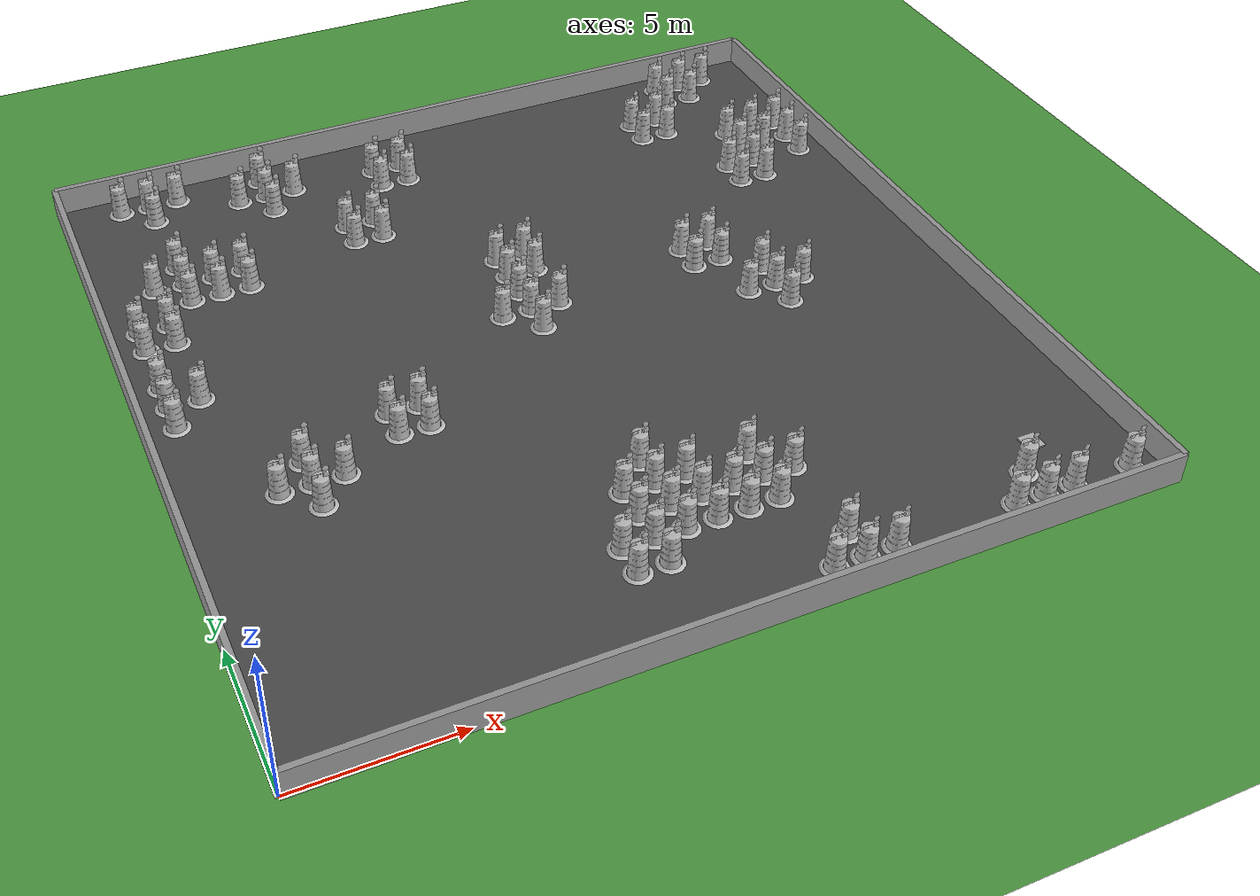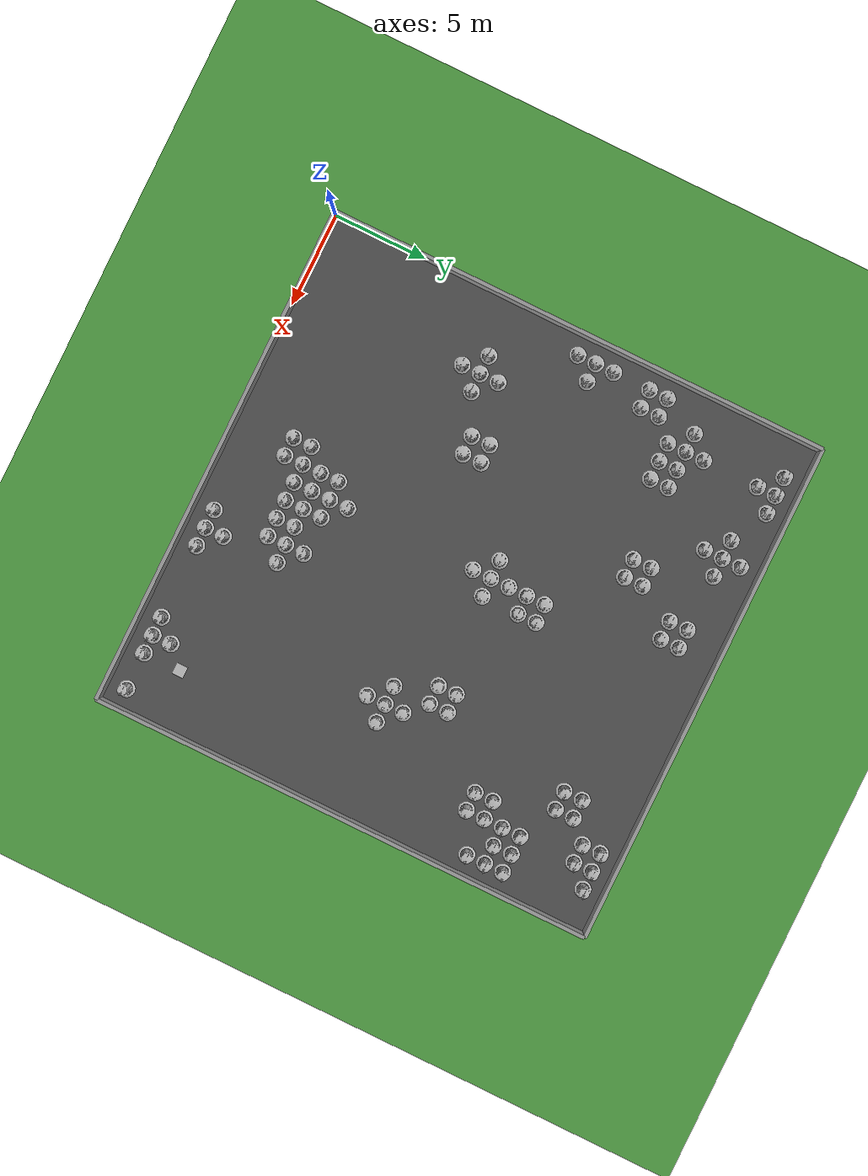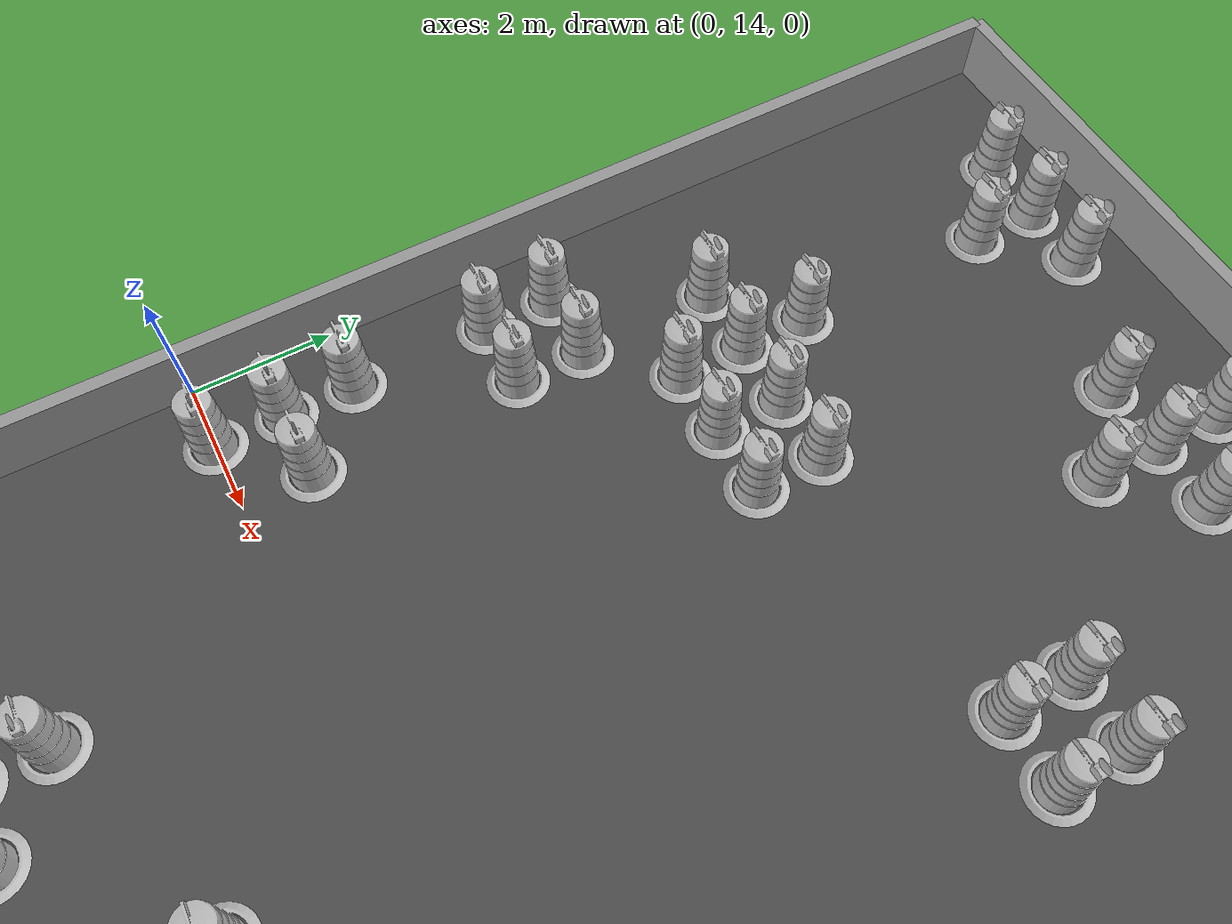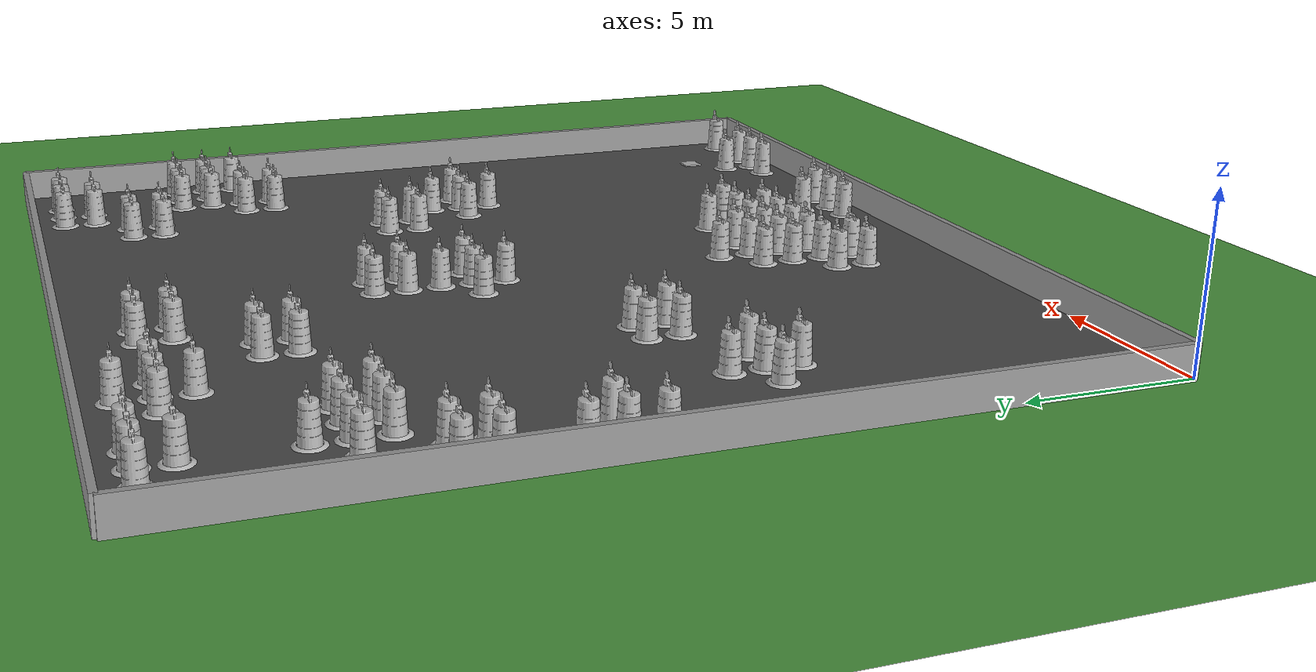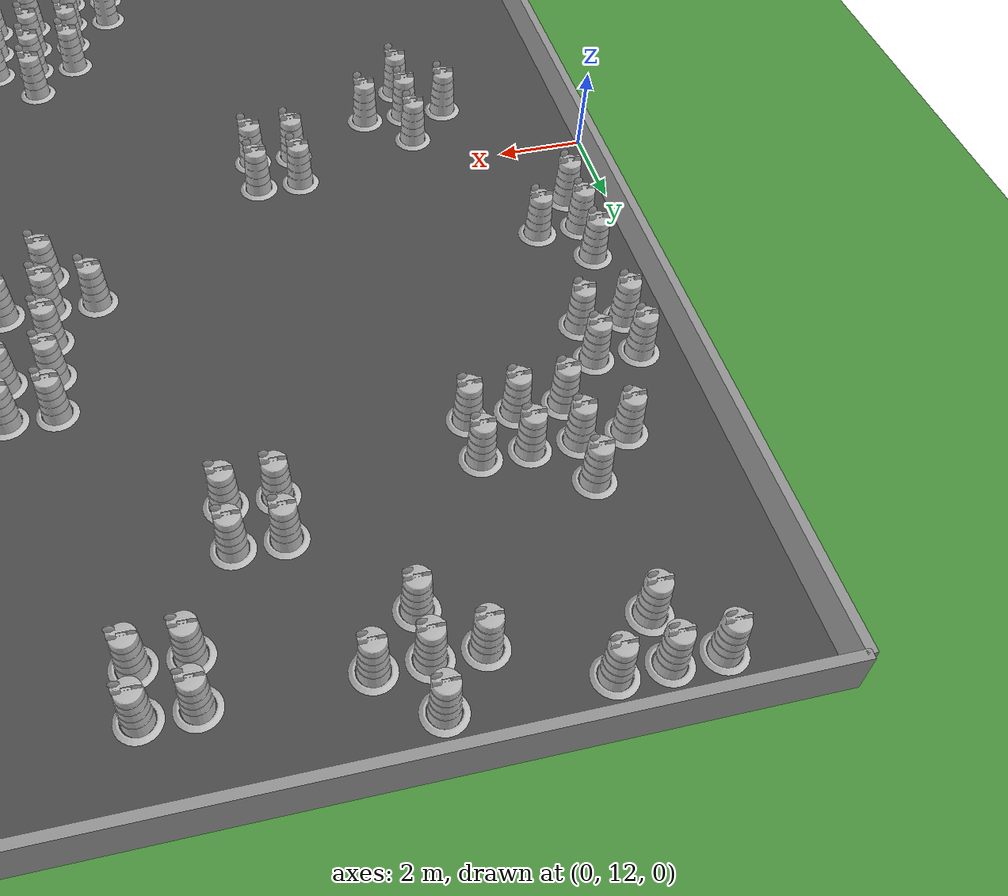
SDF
<sdf version="1.4">
 <world name="default">
  <model name="vrc_driving_terrain">
   <static>1</static>
   <link name="grass_plane">
    <visual name="visual_0">
     <cast_shadows>0</cast_shadows>
     <geometry><plane><normal>0 0 1</normal><size>150 150</size></plane></geometry>
     <material>
      <script>
       <uri>model://vrc_driving_terrain/materials/scripts</uri>
       <uri>model://vrc_driving_terrain/materials/textures</uri>
       <name>vrc/grass</name>
      </script>
     </material>
    </visual>
   </link>
   <pose>0 0 0.01 0 -0 0</pose>
  </model>
  <include><uri>model://ground_plane</uri></include>
  <include><uri>model://sun</uri></include>
  <plugin filename="librotors_gazebo_ros_interface_plugin.so" name="ros_interface_plugin"/>
  <spherical_coordinates>
   <surface_model>EARTH_WGS84</surface_model>
   <latitude_deg>47.3667</latitude_deg>
   <longitude_deg>8.5500</longitude_deg>
   <elevation>500.0</elevation>
   <heading_deg>0</heading_deg>
  </spherical_coordinates>
  <physics type="ode">
   <ode>
    <solver><type>quick</type><iters>1000</iters><sor>1.3</sor></solver>
    <constraints>
     <cfm>0</cfm>
     <erp>0.2</erp>
     <contact_max_correcting_vel>100</contact_max_correcting_vel>
     <contact_surface_layer>0.001</contact_surface_layer>
    </constraints>
   </ode>
   <max_step_size>0.01</max_step_size>
   <real_time_factor>1</real_time_factor>
   <real_time_update_rate>100</real_time_update_rate>
   <gravity>0 0 -9.8</gravity>
  </physics>
  <model name="box_target_green">
   <static>1</static>
   <link name="link">
    <pose>24 3 0 0 0 0</pose>
    <collision name="collision"><geometry><box><size>6 6 2</size></box></geometry></collision>
    <visual name="visual">
     <geometry>
      <mesh><uri>model://box_target_green/meshes/mesh.dae</uri><scale>0.1 0.1 0.1</scale></mesh>
     </geometry>
    </visual>
   </link>
  </model>
  <model name="grey_wall">
   <static>1</static>
   <link name="link">
    <visual name="visual">
     <cast_shadows>0</cast_shadows>
     <geometry><box><size>27 0.2 2</size></box></geometry>
     <material>
      <script>
       <uri>model://grey_wall/materials/scripts</uri>
       <uri>model://grey_wall/materials/textures</uri>
       <name>vrc/grey_wall</name>
      </script>
     </material>
    </visual>
   </link>
   <pose>13.5 0 0 0 0 0</pose>
  </model>
  <model name="grey_wall">
   <static>1</static>
   <link name="link">
    <visual name="visual">
     <cast_shadows>0</cast_shadows>
     <geometry><box><size>27 0.2 2</size></box></geometry>
     <material>
      <script>
       <uri>model://grey_wall/materials/scripts</uri>
       <uri>model://grey_wall/materials/textures</uri>
       <name>vrc/grey_wall</name>
      </script>
     </material>
    </visual>
   </link>
   <pose>0 13.5 0 0 0 1.57079632679</pose>
  </model>
  <model name="grey_wall">
   <static>1</static>
   <link name="link">
    <visual name="visual">
     <cast_shadows>0</cast_shadows>
     <geometry><box><size>27 0.2 2</size></box></geometry>
     <material>
      <script>
       <uri>model://grey_wall/materials/scripts</uri>
       <uri>model://grey_wall/materials/textures</uri>
       <name>vrc/grey_wall</name>
      </script>
     </material>
    </visual>
   </link>
   <pose>27 13.5 0 0 0 -1.57079632679</pose>
  </model>
  <model name="grey_wall">
   <static>1</static>
   <link name="link">
    <visual name="visual">
     <cast_shadows>0</cast_shadows>
     <geometry><box><size>27 0.2 2</size></box></geometry>
     <material>
      <script>
       <uri>model://grey_wall/materials/scripts</uri>
       <uri>model://grey_wall/materials/textures</uri>
       <name>vrc/grey_wall</name>
      </script>
     </material>
    </visual>
   </link>
   <pose>13.5 27 0 0 0 3.14159265359</pose>
  </model>
  <model name="asphalt_plane">
   <static>1</static>
   <link name="link">
    <visual name="visual">
     <cast_shadows>0</cast_shadows>
     <geometry><box><size>27 27 0.1</size></box></geometry>
     <material>
      <script>
       <uri>model://asphalt_plane/materials/scripts</uri>
       <uri>model://asphalt_plane/materials/textures</uri>
       <name>vrc/asphalt</name>
      </script>
     </material>
    </visual>
   </link>
   <pose>13.5 13.5 0 0 0 0</pose>
  </model>
  <model name="Construction Barrel">
   <link name="link">
    <collision name="collision">
     <geometry>
      <mesh><uri>model://construction_barrel/meshes/construction_barrel.dae</uri><scale>1 1 1</scale></mesh>
     </geometry>
    </collision>
    <visual name="visual">
     <geometry><mesh><uri>model://construction_barrel/meshes/construction_barrel.dae</uri></mesh></geometry>
    </visual>
   </link>
   <pose>1 14 0 0 0 0</pose>
   <static>1</static>
  </model>
  <model name="Construction Barrel">
   <link name="link">
    <collision name="collision">
     <geometry>
      <mesh><uri>model://construction_barrel/meshes/construction_barrel.dae</uri><scale>1 1 1</scale></mesh>
     </geometry>
    </collision>
    <visual name="visual">
     <geometry><mesh><uri>model://construction_barrel/meshes/construction_barrel.dae</uri></mesh></geometry>
    </visual>
   </link>
   <pose>1 15 0 0 0 0</pose>
   <static>1</static>
  </model>
  <model name="Construction Barrel">
   <link name="link">
    <collision name="collision">
     <geometry>
      <mesh><uri>model://construction_barrel/meshes/construction_barrel.dae</uri><scale>1 1 1</scale></mesh>
     </geometry>
    </collision>
    <visual name="visual">
     <geometry><mesh><uri>model://construction_barrel/meshes/construction_barrel.dae</uri></mesh></geometry>
    </visual>
   </link>
   <pose>1 16 0 0 0 0</pose>
   <static>1</static>
  </model>
  <model name="Construction Barrel">
   <link name="link">
    <collision name="collision">
     <geometry>
      <mesh><uri>model://construction_barrel/meshes/construction_barrel.dae</uri><scale>1 1 1</scale></mesh>
     </geometry>
    </collision>
    <visual name="visual">
     <geometry><mesh><uri>model://construction_barrel/meshes/construction_barrel.dae</uri></mesh></geometry>
    </visual>
   </link>
   <pose>1 18 0 0 0 0</pose>
   <static>1</static>
  </model>
  <model name="Construction Barrel">
   <link name="link">
    <collision name="collision">
     <geometry>
      <mesh><uri>model://construction_barrel/meshes/construction_barrel.dae</uri><scale>1 1 1</scale></mesh>
     </geometry>
    </collision>
    <visual name="visual">
     <geometry><mesh><uri>model://construction_barrel/meshes/construction_barrel.dae</uri></mesh></geometry>
    </visual>
   </link>
   <pose>1 19 0 0 0 0</pose>
   <static>1</static>
  </model>
  <model name="Construction Barrel">
   <link name="link">
    <collision name="collision">
     <geometry>
      <mesh><uri>model://construction_barrel/meshes/construction_barrel.dae</uri><scale>1 1 1</scale></mesh>
     </geometry>
    </collision>
    <visual name="visual">
     <geometry><mesh><uri>model://construction_barrel/meshes/construction_barrel.dae</uri></mesh></geometry>
    </visual>
   </link>
   <pose>2 15 0 0 0 0</pose>
   <static>1</static>
  </model>
  <model name="Construction Barrel">
   <link name="link">
    <collision name="collision">
     <geometry>
      <mesh><uri>model://construction_barrel/meshes/construction_barrel.dae</uri><scale>1 1 1</scale></mesh>
     </geometry>
    </collision>
    <visual name="visual">
     <geometry><mesh><uri>model://construction_barrel/meshes/construction_barrel.dae</uri></mesh></geometry>
    </visual>
   </link>
   <pose>2 18 0 0 0 0</pose>
   <static>1</static>
  </model>
  <model name="Construction Barrel">
   <link name="link">
    <collision name="collision">
     <geometry>
      <mesh><uri>model://construction_barrel/meshes/construction_barrel.dae</uri><scale>1 1 1</scale></mesh>
     </geometry>
    </collision>
    <visual name="visual">
     <geometry><mesh><uri>model://construction_barrel/meshes/construction_barrel.dae</uri></mesh></geometry>
    </visual>
   </link>
   <pose>2 19 0 0 0 0</pose>
   <static>1</static>
  </model>
  <model name="Construction Barrel">
   <link name="link">
    <collision name="collision">
     <geometry>
      <mesh><uri>model://construction_barrel/meshes/construction_barrel.dae</uri><scale>1 1 1</scale></mesh>
     </geometry>
    </collision>
    <visual name="visual">
     <geometry><mesh><uri>model://construction_barrel/meshes/construction_barrel.dae</uri></mesh></geometry>
    </visual>
   </link>
   <pose>2 21 0 0 0 0</pose>
   <static>1</static>
  </model>
  <model name="Construction Barrel">
   <link name="link">
    <collision name="collision">
     <geometry>
      <mesh><uri>model://construction_barrel/meshes/construction_barrel.dae</uri><scale>1 1 1</scale></mesh>
     </geometry>
    </collision>
    <visual name="visual">
     <geometry><mesh><uri>model://construction_barrel/meshes/construction_barrel.dae</uri></mesh></geometry>
    </visual>
   </link>
   <pose>2 26 0 0 0 0</pose>
   <static>1</static>
  </model>
  <model name="Construction Barrel">
   <link name="link">
    <collision name="collision">
     <geometry>
      <mesh><uri>model://construction_barrel/meshes/construction_barrel.dae</uri><scale>1 1 1</scale></mesh>
     </geometry>
    </collision>
    <visual name="visual">
     <geometry><mesh><uri>model://construction_barrel/meshes/construction_barrel.dae</uri></mesh></geometry>
    </visual>
   </link>
   <pose>3 10 0 0 0 0</pose>
   <static>1</static>
  </model>
  <model name="Construction Barrel">
   <link name="link">
    <collision name="collision">
     <geometry>
      <mesh><uri>model://construction_barrel/meshes/construction_barrel.dae</uri><scale>1 1 1</scale></mesh>
     </geometry>
    </collision>
    <visual name="visual">
     <geometry><mesh><uri>model://construction_barrel/meshes/construction_barrel.dae</uri></mesh></geometry>
    </visual>
   </link>
   <pose>3 20 0 0 0 0</pose>
   <static>1</static>
  </model>
  <model name="Construction Barrel">
   <link name="link">
    <collision name="collision">
     <geometry>
      <mesh><uri>model://construction_barrel/meshes/construction_barrel.dae</uri><scale>1 1 1</scale></mesh>
     </geometry>
    </collision>
    <visual name="visual">
     <geometry><mesh><uri>model://construction_barrel/meshes/construction_barrel.dae</uri></mesh></geometry>
    </visual>
   </link>
   <pose>3 21 0 0 0 0</pose>
   <static>1</static>
  </model>
  <model name="Construction Barrel">
   <link name="link">
    <collision name="collision">
     <geometry>
      <mesh><uri>model://construction_barrel/meshes/construction_barrel.dae</uri><scale>1 1 1</scale></mesh>
     </geometry>
    </collision>
    <visual name="visual">
     <geometry><mesh><uri>model://construction_barrel/meshes/construction_barrel.dae</uri></mesh></geometry>
    </visual>
   </link>
   <pose>3 22 0 0 0 0</pose>
   <static>1</static>
  </model>
  <model name="Construction Barrel">
   <link name="link">
    <collision name="collision">
     <geometry>
      <mesh><uri>model://construction_barrel/meshes/construction_barrel.dae</uri><scale>1 1 1</scale></mesh>
     </geometry>
    </collision>
    <visual name="visual">
     <geometry><mesh><uri>model://construction_barrel/meshes/construction_barrel.dae</uri></mesh></geometry>
    </visual>
   </link>
   <pose>3 25 0 0 0 0</pose>
   <static>1</static>
  </model>
  <model name="Construction Barrel">
   <link name="link">
    <collision name="collision">
     <geometry>
      <mesh><uri>model://construction_barrel/meshes/construction_barrel.dae</uri><scale>1 1 1</scale></mesh>
     </geometry>
    </collision>
    <visual name="visual">
     <geometry><mesh><uri>model://construction_barrel/meshes/construction_barrel.dae</uri></mesh></geometry>
    </visual>
   </link>
   <pose>3 26 0 0 0 0</pose>
   <static>1</static>
  </model>
  <model name="Construction Barrel">
   <link name="link">
    <collision name="collision">
     <geometry>
      <mesh><uri>model://construction_barrel/meshes/construction_barrel.dae</uri><scale>1 1 1</scale></mesh>
     </geometry>
    </collision>
    <visual name="visual">
     <geometry><mesh><uri>model://construction_barrel/meshes/construction_barrel.dae</uri></mesh></geometry>
    </visual>
   </link>
   <pose>4 9 0 0 0 0</pose>
   <static>1</static>
  </model>
  <model name="Construction Barrel">
   <link name="link">
    <collision name="collision">
     <geometry>
      <mesh><uri>model://construction_barrel/meshes/construction_barrel.dae</uri><scale>1 1 1</scale></mesh>
     </geometry>
    </collision>
    <visual name="visual">
     <geometry><mesh><uri>model://construction_barrel/meshes/construction_barrel.dae</uri></mesh></geometry>
    </visual>
   </link>
   <pose>4 10 0 0 0 0</pose>
   <static>1</static>
  </model>
  <model name="Construction Barrel">
   <link name="link">
    <collision name="collision">
     <geometry>
      <mesh><uri>model://construction_barrel/meshes/construction_barrel.dae</uri><scale>1 1 1</scale></mesh>
     </geometry>
    </collision>
    <visual name="visual">
     <geometry><mesh><uri>model://construction_barrel/meshes/construction_barrel.dae</uri></mesh></geometry>
    </visual>
   </link>
   <pose>4 11 0 0 0 0</pose>
   <static>1</static>
  </model>
  <model name="Construction Barrel">
   <link name="link">
    <collision name="collision">
     <geometry>
      <mesh><uri>model://construction_barrel/meshes/construction_barrel.dae</uri><scale>1 1 1</scale></mesh>
     </geometry>
    </collision>
    <visual name="visual">
     <geometry><mesh><uri>model://construction_barrel/meshes/construction_barrel.dae</uri></mesh></geometry>
    </visual>
   </link>
   <pose>4 20 0 0 0 0</pose>
   <static>1</static>
  </model>
  <model name="Construction Barrel">
   <link name="link">
    <collision name="collision">
     <geometry>
      <mesh><uri>model://construction_barrel/meshes/construction_barrel.dae</uri><scale>1 1 1</scale></mesh>
     </geometry>
    </collision>
    <visual name="visual">
     <geometry><mesh><uri>model://construction_barrel/meshes/construction_barrel.dae</uri></mesh></geometry>
    </visual>
   </link>
   <pose>4 21 0 0 0 0</pose>
   <static>1</static>
  </model>
  <model name="Construction Barrel">
   <link name="link">
    <collision name="collision">
     <geometry>
      <mesh><uri>model://construction_barrel/meshes/construction_barrel.dae</uri><scale>1 1 1</scale></mesh>
     </geometry>
    </collision>
    <visual name="visual">
     <geometry><mesh><uri>model://construction_barrel/meshes/construction_barrel.dae</uri></mesh></geometry>
    </visual>
   </link>
   <pose>4 26 0 0 0 0</pose>
   <static>1</static>
  </model>
  <model name="Construction Barrel">
   <link name="link">
    <collision name="collision">
     <geometry>
      <mesh><uri>model://construction_barrel/meshes/construction_barrel.dae</uri><scale>1 1 1</scale></mesh>
     </geometry>
    </collision>
    <visual name="visual">
     <geometry><mesh><uri>model://construction_barrel/meshes/construction_barrel.dae</uri></mesh></geometry>
    </visual>
   </link>
   <pose>5 10 0 0 0 0</pose>
   <static>1</static>
  </model>
  <model name="Construction Barrel">
   <link name="link">
    <collision name="collision">
     <geometry>
      <mesh><uri>model://construction_barrel/meshes/construction_barrel.dae</uri><scale>1 1 1</scale></mesh>
     </geometry>
    </collision>
    <visual name="visual">
     <geometry><mesh><uri>model://construction_barrel/meshes/construction_barrel.dae</uri></mesh></geometry>
    </visual>
   </link>
   <pose>5 20 0 0 0 0</pose>
   <static>1</static>
  </model>
  <model name="Construction Barrel">
   <link name="link">
    <collision name="collision">
     <geometry>
      <mesh><uri>model://construction_barrel/meshes/construction_barrel.dae</uri><scale>1 1 1</scale></mesh>
     </geometry>
    </collision>
    <visual name="visual">
     <geometry><mesh><uri>model://construction_barrel/meshes/construction_barrel.dae</uri></mesh></geometry>
    </visual>
   </link>
   <pose>5 21 0 0 0 0</pose>
   <static>1</static>
  </model>
  <model name="Construction Barrel">
   <link name="link">
    <collision name="collision">
     <geometry>
      <mesh><uri>model://construction_barrel/meshes/construction_barrel.dae</uri><scale>1 1 1</scale></mesh>
     </geometry>
    </collision>
    <visual name="visual">
     <geometry><mesh><uri>model://construction_barrel/meshes/construction_barrel.dae</uri></mesh></geometry>
    </visual>
   </link>
   <pose>6 25 0 0 0 0</pose>
   <static>1</static>
  </model>
  <model name="Construction Barrel">
   <link name="link">
    <collision name="collision">
     <geometry>
      <mesh><uri>model://construction_barrel/meshes/construction_barrel.dae</uri><scale>1 1 1</scale></mesh>
     </geometry>
    </collision>
    <visual name="visual">
     <geometry><mesh><uri>model://construction_barrel/meshes/construction_barrel.dae</uri></mesh></geometry>
    </visual>
   </link>
   <pose>7 11 0 0 0 0</pose>
   <static>1</static>
  </model>
  <model name="Construction Barrel">
   <link name="link">
    <collision name="collision">
     <geometry>
      <mesh><uri>model://construction_barrel/meshes/construction_barrel.dae</uri><scale>1 1 1</scale></mesh>
     </geometry>
    </collision>
    <visual name="visual">
     <geometry><mesh><uri>model://construction_barrel/meshes/construction_barrel.dae</uri></mesh></geometry>
    </visual>
   </link>
   <pose>7 12 0 0 0 0</pose>
   <static>1</static>
  </model>
  <model name="Construction Barrel">
   <link name="link">
    <collision name="collision">
     <geometry>
      <mesh><uri>model://construction_barrel/meshes/construction_barrel.dae</uri><scale>1 1 1</scale></mesh>
     </geometry>
    </collision>
    <visual name="visual">
     <geometry><mesh><uri>model://construction_barrel/meshes/construction_barrel.dae</uri></mesh></geometry>
    </visual>
   </link>
   <pose>7 24 0 0 0 0</pose>
   <static>1</static>
  </model>
  <model name="Construction Barrel">
   <link name="link">
    <collision name="collision">
     <geometry>
      <mesh><uri>model://construction_barrel/meshes/construction_barrel.dae</uri><scale>1 1 1</scale></mesh>
     </geometry>
    </collision>
    <visual name="visual">
     <geometry><mesh><uri>model://construction_barrel/meshes/construction_barrel.dae</uri></mesh></geometry>
    </visual>
   </link>
   <pose>7 25 0 0 0 0</pose>
   <static>1</static>
  </model>
  <model name="Construction Barrel">
   <link name="link">
    <collision name="collision">
     <geometry>
      <mesh><uri>model://construction_barrel/meshes/construction_barrel.dae</uri><scale>1 1 1</scale></mesh>
     </geometry>
    </collision>
    <visual name="visual">
     <geometry><mesh><uri>model://construction_barrel/meshes/construction_barrel.dae</uri></mesh></geometry>
    </visual>
   </link>
   <pose>7 26 0 0 0 0</pose>
   <static>1</static>
  </model>
  <model name="Construction Barrel">
   <link name="link">
    <collision name="collision">
     <geometry>
      <mesh><uri>model://construction_barrel/meshes/construction_barrel.dae</uri><scale>1 1 1</scale></mesh>
     </geometry>
    </collision>
    <visual name="visual">
     <geometry><mesh><uri>model://construction_barrel/meshes/construction_barrel.dae</uri></mesh></geometry>
    </visual>
   </link>
   <pose>8 11 0 0 0 0</pose>
   <static>1</static>
  </model>
  <model name="Construction Barrel">
   <link name="link">
    <collision name="collision">
     <geometry>
      <mesh><uri>model://construction_barrel/meshes/construction_barrel.dae</uri><scale>1 1 1</scale></mesh>
     </geometry>
    </collision>
    <visual name="visual">
     <geometry><mesh><uri>model://construction_barrel/meshes/construction_barrel.dae</uri></mesh></geometry>
    </visual>
   </link>
   <pose>8 12 0 0 0 0</pose>
   <static>1</static>
  </model>
  <model name="Construction Barrel">
   <link name="link">
    <collision name="collision">
     <geometry>
      <mesh><uri>model://construction_barrel/meshes/construction_barrel.dae</uri><scale>1 1 1</scale></mesh>
     </geometry>
    </collision>
    <visual name="visual">
     <geometry><mesh><uri>model://construction_barrel/meshes/construction_barrel.dae</uri></mesh></geometry>
    </visual>
   </link>
   <pose>8 25 0 0 0 0</pose>
   <static>1</static>
  </model>
  <model name="Construction Barrel">
   <link name="link">
    <collision name="collision">
     <geometry>
      <mesh><uri>model://construction_barrel/meshes/construction_barrel.dae</uri><scale>1 1 1</scale></mesh>
     </geometry>
    </collision>
    <visual name="visual">
     <geometry><mesh><uri>model://construction_barrel/meshes/construction_barrel.dae</uri></mesh></geometry>
    </visual>
   </link>
   <pose>9 21 0 0 0 0</pose>
   <static>1</static>
  </model>
  <model name="Construction Barrel">
   <link name="link">
    <collision name="collision">
     <geometry>
      <mesh><uri>model://construction_barrel/meshes/construction_barrel.dae</uri><scale>1 1 1</scale></mesh>
     </geometry>
    </collision>
    <visual name="visual">
     <geometry><mesh><uri>model://construction_barrel/meshes/construction_barrel.dae</uri></mesh></geometry>
    </visual>
   </link>
   <pose>9 22 0 0 0 0</pose>
   <static>1</static>
  </model>
  <model name="Construction Barrel">
   <link name="link">
    <collision name="collision">
     <geometry>
      <mesh><uri>model://construction_barrel/meshes/construction_barrel.dae</uri><scale>1 1 1</scale></mesh>
     </geometry>
    </collision>
    <visual name="visual">
     <geometry><mesh><uri>model://construction_barrel/meshes/construction_barrel.dae</uri></mesh></geometry>
    </visual>
   </link>
   <pose>10 21 0 0 0 0</pose>
   <static>1</static>
  </model>
  <model name="Construction Barrel">
   <link name="link">
    <collision name="collision">
     <geometry>
      <mesh><uri>model://construction_barrel/meshes/construction_barrel.dae</uri><scale>1 1 1</scale></mesh>
     </geometry>
    </collision>
    <visual name="visual">
     <geometry><mesh><uri>model://construction_barrel/meshes/construction_barrel.dae</uri></mesh></geometry>
    </visual>
   </link>
   <pose>10 22 0 0 0 0</pose>
   <static>1</static>
  </model>
  <model name="Construction Barrel">
   <link name="link">
    <collision name="collision">
     <geometry>
      <mesh><uri>model://construction_barrel/meshes/construction_barrel.dae</uri><scale>1 1 1</scale></mesh>
     </geometry>
    </collision>
    <visual name="visual">
     <geometry><mesh><uri>model://construction_barrel/meshes/construction_barrel.dae</uri></mesh></geometry>
    </visual>
   </link>
   <pose>11 3 0 0 0 0</pose>
   <static>1</static>
  </model>
  <model name="Construction Barrel">
   <link name="link">
    <collision name="collision">
     <geometry>
      <mesh><uri>model://construction_barrel/meshes/construction_barrel.dae</uri><scale>1 1 1</scale></mesh>
     </geometry>
    </collision>
    <visual name="visual">
     <geometry><mesh><uri>model://construction_barrel/meshes/construction_barrel.dae</uri></mesh></geometry>
    </visual>
   </link>
   <pose>11 4 0 0 0 0</pose>
   <static>1</static>
  </model>
  <model name="Construction Barrel">
   <link name="link">
    <collision name="collision">
     <geometry>
      <mesh><uri>model://construction_barrel/meshes/construction_barrel.dae</uri><scale>1 1 1</scale></mesh>
     </geometry>
    </collision>
    <visual name="visual">
     <geometry><mesh><uri>model://construction_barrel/meshes/construction_barrel.dae</uri></mesh></geometry>
    </visual>
   </link>
   <pose>11 24 0 0 0 0</pose>
   <static>1</static>
  </model>
  <model name="Construction Barrel">
   <link name="link">
    <collision name="collision">
     <geometry>
      <mesh><uri>model://construction_barrel/meshes/construction_barrel.dae</uri><scale>1 1 1</scale></mesh>
     </geometry>
    </collision>
    <visual name="visual">
     <geometry><mesh><uri>model://construction_barrel/meshes/construction_barrel.dae</uri></mesh></geometry>
    </visual>
   </link>
   <pose>11 25 0 0 0 0</pose>
   <static>1</static>
  </model>
  <model name="Construction Barrel">
   <link name="link">
    <collision name="collision">
     <geometry>
      <mesh><uri>model://construction_barrel/meshes/construction_barrel.dae</uri><scale>1 1 1</scale></mesh>
     </geometry>
    </collision>
    <visual name="visual">
     <geometry><mesh><uri>model://construction_barrel/meshes/construction_barrel.dae</uri></mesh></geometry>
    </visual>
   </link>
   <pose>12 3 0 0 0 0</pose>
   <static>1</static>
  </model>
  <model name="Construction Barrel">
   <link name="link">
    <collision name="collision">
     <geometry>
      <mesh><uri>model://construction_barrel/meshes/construction_barrel.dae</uri><scale>1 1 1</scale></mesh>
     </geometry>
    </collision>
    <visual name="visual">
     <geometry><mesh><uri>model://construction_barrel/meshes/construction_barrel.dae</uri></mesh></geometry>
    </visual>
   </link>
   <pose>12 4 0 0 0 0</pose>
   <static>1</static>
  </model>
  <model name="Construction Barrel">
   <link name="link">
    <collision name="collision">
     <geometry>
      <mesh><uri>model://construction_barrel/meshes/construction_barrel.dae</uri><scale>1 1 1</scale></mesh>
     </geometry>
    </collision>
    <visual name="visual">
     <geometry><mesh><uri>model://construction_barrel/meshes/construction_barrel.dae</uri></mesh></geometry>
    </visual>
   </link>
   <pose>12 5 0 0 0 0</pose>
   <static>1</static>
  </model>
  <model name="Construction Barrel">
   <link name="link">
    <collision name="collision">
     <geometry>
      <mesh><uri>model://construction_barrel/meshes/construction_barrel.dae</uri><scale>1 1 1</scale></mesh>
     </geometry>
    </collision>
    <visual name="visual">
     <geometry><mesh><uri>model://construction_barrel/meshes/construction_barrel.dae</uri></mesh></geometry>
    </visual>
   </link>
   <pose>12 6 0 0 0 0</pose>
   <static>1</static>
  </model>
  <model name="Construction Barrel">
   <link name="link">
    <collision name="collision">
     <geometry>
      <mesh><uri>model://construction_barrel/meshes/construction_barrel.dae</uri><scale>1 1 1</scale></mesh>
     </geometry>
    </collision>
    <visual name="visual">
     <geometry><mesh><uri>model://construction_barrel/meshes/construction_barrel.dae</uri></mesh></geometry>
    </visual>
   </link>
   <pose>12 15 0 0 0 0</pose>
   <static>1</static>
  </model>
  <model name="Construction Barrel">
   <link name="link">
    <collision name="collision">
     <geometry>
      <mesh><uri>model://construction_barrel/meshes/construction_barrel.dae</uri><scale>1 1 1</scale></mesh>
     </geometry>
    </collision>
    <visual name="visual">
     <geometry><mesh><uri>model://construction_barrel/meshes/construction_barrel.dae</uri></mesh></geometry>
    </visual>
   </link>
   <pose>12 24 0 0 0 0</pose>
   <static>1</static>
  </model>
  <model name="Construction Barrel">
   <link name="link">
    <collision name="collision">
     <geometry>
      <mesh><uri>model://construction_barrel/meshes/construction_barrel.dae</uri><scale>1 1 1</scale></mesh>
     </geometry>
    </collision>
    <visual name="visual">
     <geometry><mesh><uri>model://construction_barrel/meshes/construction_barrel.dae</uri></mesh></geometry>
    </visual>
   </link>
   <pose>12 25 0 0 0 0</pose>
   <static>1</static>
  </model>
  <model name="Construction Barrel">
   <link name="link">
    <collision name="collision">
     <geometry>
      <mesh><uri>model://construction_barrel/meshes/construction_barrel.dae</uri><scale>1 1 1</scale></mesh>
     </geometry>
    </collision>
    <visual name="visual">
     <geometry><mesh><uri>model://construction_barrel/meshes/construction_barrel.dae</uri></mesh></geometry>
    </visual>
   </link>
   <pose>13 4 0 0 0 0</pose>
   <static>1</static>
  </model>
  <model name="Construction Barrel">
   <link name="link">
    <collision name="collision">
     <geometry>
      <mesh><uri>model://construction_barrel/meshes/construction_barrel.dae</uri><scale>1 1 1</scale></mesh>
     </geometry>
    </collision>
    <visual name="visual">
     <geometry><mesh><uri>model://construction_barrel/meshes/construction_barrel.dae</uri></mesh></geometry>
    </visual>
   </link>
   <pose>13 5 0 0 0 0</pose>
   <static>1</static>
  </model>
  <model name="Construction Barrel">
   <link name="link">
    <collision name="collision">
     <geometry>
      <mesh><uri>model://construction_barrel/meshes/construction_barrel.dae</uri><scale>1 1 1</scale></mesh>
     </geometry>
    </collision>
    <visual name="visual">
     <geometry><mesh><uri>model://construction_barrel/meshes/construction_barrel.dae</uri></mesh></geometry>
    </visual>
   </link>
   <pose>13 6 0 0 0 0</pose>
   <static>1</static>
  </model>
  <model name="Construction Barrel">
   <link name="link">
    <collision name="collision">
     <geometry>
      <mesh><uri>model://construction_barrel/meshes/construction_barrel.dae</uri><scale>1 1 1</scale></mesh>
     </geometry>
    </collision>
    <visual name="visual">
     <geometry><mesh><uri>model://construction_barrel/meshes/construction_barrel.dae</uri></mesh></geometry>
    </visual>
   </link>
   <pose>13 7 0 0 0 0</pose>
   <static>1</static>
  </model>
  <model name="Construction Barrel">
   <link name="link">
    <collision name="collision">
     <geometry>
      <mesh><uri>model://construction_barrel/meshes/construction_barrel.dae</uri><scale>1 1 1</scale></mesh>
     </geometry>
    </collision>
    <visual name="visual">
     <geometry><mesh><uri>model://construction_barrel/meshes/construction_barrel.dae</uri></mesh></geometry>
    </visual>
   </link>
   <pose>13 14 0 0 0 0</pose>
   <static>1</static>
  </model>
  <model name="Construction Barrel">
   <link name="link">
    <collision name="collision">
     <geometry>
      <mesh><uri>model://construction_barrel/meshes/construction_barrel.dae</uri><scale>1 1 1</scale></mesh>
     </geometry>
    </collision>
    <visual name="visual">
     <geometry><mesh><uri>model://construction_barrel/meshes/construction_barrel.dae</uri></mesh></geometry>
    </visual>
   </link>
   <pose>13 15 0 0 0 0</pose>
   <static>1</static>
  </model>
  <model name="Construction Barrel">
   <link name="link">
    <collision name="collision">
     <geometry>
      <mesh><uri>model://construction_barrel/meshes/construction_barrel.dae</uri><scale>1 1 1</scale></mesh>
     </geometry>
    </collision>
    <visual name="visual">
     <geometry><mesh><uri>model://construction_barrel/meshes/construction_barrel.dae</uri></mesh></geometry>
    </visual>
   </link>
   <pose>13 16 0 0 0 0</pose>
   <static>1</static>
  </model>
  <model name="Construction Barrel">
   <link name="link">
    <collision name="collision">
     <geometry>
      <mesh><uri>model://construction_barrel/meshes/construction_barrel.dae</uri><scale>1 1 1</scale></mesh>
     </geometry>
    </collision>
    <visual name="visual">
     <geometry><mesh><uri>model://construction_barrel/meshes/construction_barrel.dae</uri></mesh></geometry>
    </visual>
   </link>
   <pose>13 17 0 0 0 0</pose>
   <static>1</static>
  </model>
  <model name="Construction Barrel">
   <link name="link">
    <collision name="collision">
     <geometry>
      <mesh><uri>model://construction_barrel/meshes/construction_barrel.dae</uri><scale>1 1 1</scale></mesh>
     </geometry>
    </collision>
    <visual name="visual">
     <geometry><mesh><uri>model://construction_barrel/meshes/construction_barrel.dae</uri></mesh></geometry>
    </visual>
   </link>
   <pose>13 18 0 0 0 0</pose>
   <static>1</static>
  </model>
  <model name="Construction Barrel">
   <link name="link">
    <collision name="collision">
     <geometry>
      <mesh><uri>model://construction_barrel/meshes/construction_barrel.dae</uri><scale>1 1 1</scale></mesh>
     </geometry>
    </collision>
    <visual name="visual">
     <geometry><mesh><uri>model://construction_barrel/meshes/construction_barrel.dae</uri></mesh></geometry>
    </visual>
   </link>
   <pose>14 4 0 0 0 0</pose>
   <static>1</static>
  </model>
  <model name="Construction Barrel">
   <link name="link">
    <collision name="collision">
     <geometry>
      <mesh><uri>model://construction_barrel/meshes/construction_barrel.dae</uri><scale>1 1 1</scale></mesh>
     </geometry>
    </collision>
    <visual name="visual">
     <geometry><mesh><uri>model://construction_barrel/meshes/construction_barrel.dae</uri></mesh></geometry>
    </visual>
   </link>
   <pose>14 5 0 0 0 0</pose>
   <static>1</static>
  </model>
  <model name="Construction Barrel">
   <link name="link">
    <collision name="collision">
     <geometry>
      <mesh><uri>model://construction_barrel/meshes/construction_barrel.dae</uri><scale>1 1 1</scale></mesh>
     </geometry>
    </collision>
    <visual name="visual">
     <geometry><mesh><uri>model://construction_barrel/meshes/construction_barrel.dae</uri></mesh></geometry>
    </visual>
   </link>
   <pose>14 6 0 0 0 0</pose>
   <static>1</static>
  </model>
  <model name="Construction Barrel">
   <link name="link">
    <collision name="collision">
     <geometry>
      <mesh><uri>model://construction_barrel/meshes/construction_barrel.dae</uri><scale>1 1 1</scale></mesh>
     </geometry>
    </collision>
    <visual name="visual">
     <geometry><mesh><uri>model://construction_barrel/meshes/construction_barrel.dae</uri></mesh></geometry>
    </visual>
   </link>
   <pose>14 15 0 0 0 0</pose>
   <static>1</static>
  </model>
  <model name="Construction Barrel">
   <link name="link">
    <collision name="collision">
     <geometry>
      <mesh><uri>model://construction_barrel/meshes/construction_barrel.dae</uri><scale>1 1 1</scale></mesh>
     </geometry>
    </collision>
    <visual name="visual">
     <geometry><mesh><uri>model://construction_barrel/meshes/construction_barrel.dae</uri></mesh></geometry>
    </visual>
   </link>
   <pose>14 17 0 0 0 0</pose>
   <static>1</static>
  </model>
  <model name="Construction Barrel">
   <link name="link">
    <collision name="collision">
     <geometry>
      <mesh><uri>model://construction_barrel/meshes/construction_barrel.dae</uri><scale>1 1 1</scale></mesh>
     </geometry>
    </collision>
    <visual name="visual">
     <geometry><mesh><uri>model://construction_barrel/meshes/construction_barrel.dae</uri></mesh></geometry>
    </visual>
   </link>
   <pose>14 18 0 0 0 0</pose>
   <static>1</static>
  </model>
  <model name="Construction Barrel">
   <link name="link">
    <collision name="collision">
     <geometry>
      <mesh><uri>model://construction_barrel/meshes/construction_barrel.dae</uri><scale>1 1 1</scale></mesh>
     </geometry>
    </collision>
    <visual name="visual">
     <geometry><mesh><uri>model://construction_barrel/meshes/construction_barrel.dae</uri></mesh></geometry>
    </visual>
   </link>
   <pose>15 4 0 0 0 0</pose>
   <static>1</static>
  </model>
  <model name="Construction Barrel">
   <link name="link">
    <collision name="collision">
     <geometry>
      <mesh><uri>model://construction_barrel/meshes/construction_barrel.dae</uri><scale>1 1 1</scale></mesh>
     </geometry>
    </collision>
    <visual name="visual">
     <geometry><mesh><uri>model://construction_barrel/meshes/construction_barrel.dae</uri></mesh></geometry>
    </visual>
   </link>
   <pose>15 5 0 0 0 0</pose>
   <static>1</static>
  </model>
  <model name="Construction Barrel">
   <link name="link">
    <collision name="collision">
     <geometry>
      <mesh><uri>model://construction_barrel/meshes/construction_barrel.dae</uri><scale>1 1 1</scale></mesh>
     </geometry>
    </collision>
    <visual name="visual">
     <geometry><mesh><uri>model://construction_barrel/meshes/construction_barrel.dae</uri></mesh></geometry>
    </visual>
   </link>
   <pose>16 1 0 0 0 0</pose>
   <static>1</static>
  </model>
  <model name="Construction Barrel">
   <link name="link">
    <collision name="collision">
     <geometry>
      <mesh><uri>model://construction_barrel/meshes/construction_barrel.dae</uri><scale>1 1 1</scale></mesh>
     </geometry>
    </collision>
    <visual name="visual">
     <geometry><mesh><uri>model://construction_barrel/meshes/construction_barrel.dae</uri></mesh></geometry>
    </visual>
   </link>
   <pose>16 4 0 0 0 0</pose>
   <static>1</static>
  </model>
  <model name="Construction Barrel">
   <link name="link">
    <collision name="collision">
     <geometry>
      <mesh><uri>model://construction_barrel/meshes/construction_barrel.dae</uri><scale>1 1 1</scale></mesh>
     </geometry>
    </collision>
    <visual name="visual">
     <geometry><mesh><uri>model://construction_barrel/meshes/construction_barrel.dae</uri></mesh></geometry>
    </visual>
   </link>
   <pose>16 5 0 0 0 0</pose>
   <static>1</static>
  </model>
  <model name="Construction Barrel">
   <link name="link">
    <collision name="collision">
     <geometry>
      <mesh><uri>model://construction_barrel/meshes/construction_barrel.dae</uri><scale>1 1 1</scale></mesh>
     </geometry>
    </collision>
    <visual name="visual">
     <geometry><mesh><uri>model://construction_barrel/meshes/construction_barrel.dae</uri></mesh></geometry>
    </visual>
   </link>
   <pose>16 6 0 0 0 0</pose>
   <static>1</static>
  </model>
  <model name="Construction Barrel">
   <link name="link">
    <collision name="collision">
     <geometry>
      <mesh><uri>model://construction_barrel/meshes/construction_barrel.dae</uri><scale>1 1 1</scale></mesh>
     </geometry>
    </collision>
    <visual name="visual">
     <geometry><mesh><uri>model://construction_barrel/meshes/construction_barrel.dae</uri></mesh></geometry>
    </visual>
   </link>
   <pose>17 1 0 0 0 0</pose>
   <static>1</static>
  </model>
  <model name="Construction Barrel">
   <link name="link">
    <collision name="collision">
     <geometry>
      <mesh><uri>model://construction_barrel/meshes/construction_barrel.dae</uri><scale>1 1 1</scale></mesh>
     </geometry>
    </collision>
    <visual name="visual">
     <geometry><mesh><uri>model://construction_barrel/meshes/construction_barrel.dae</uri></mesh></geometry>
    </visual>
   </link>
   <pose>17 2 0 0 0 0</pose>
   <static>1</static>
  </model>
  <model name="Construction Barrel">
   <link name="link">
    <collision name="collision">
     <geometry>
      <mesh><uri>model://construction_barrel/meshes/construction_barrel.dae</uri><scale>1 1 1</scale></mesh>
     </geometry>
    </collision>
    <visual name="visual">
     <geometry><mesh><uri>model://construction_barrel/meshes/construction_barrel.dae</uri></mesh></geometry>
    </visual>
   </link>
   <pose>17 5 0 0 0 0</pose>
   <static>1</static>
  </model>
  <model name="Construction Barrel">
   <link name="link">
    <collision name="collision">
     <geometry>
      <mesh><uri>model://construction_barrel/meshes/construction_barrel.dae</uri><scale>1 1 1</scale></mesh>
     </geometry>
    </collision>
    <visual name="visual">
     <geometry><mesh><uri>model://construction_barrel/meshes/construction_barrel.dae</uri></mesh></geometry>
    </visual>
   </link>
   <pose>18 1 0 0 0 0</pose>
   <static>1</static>
  </model>
  <model name="Construction Barrel">
   <link name="link">
    <collision name="collision">
     <geometry>
      <mesh><uri>model://construction_barrel/meshes/construction_barrel.dae</uri><scale>1 1 1</scale></mesh>
     </geometry>
    </collision>
    <visual name="visual">
     <geometry><mesh><uri>model://construction_barrel/meshes/construction_barrel.dae</uri></mesh></geometry>
    </visual>
   </link>
   <pose>19 15 0 0 0 0</pose>
   <static>1</static>
  </model>
  <model name="Construction Barrel">
   <link name="link">
    <collision name="collision">
     <geometry>
      <mesh><uri>model://construction_barrel/meshes/construction_barrel.dae</uri><scale>1 1 1</scale></mesh>
     </geometry>
    </collision>
    <visual name="visual">
     <geometry><mesh><uri>model://construction_barrel/meshes/construction_barrel.dae</uri></mesh></geometry>
    </visual>
   </link>
   <pose>19 16 0 0 0 0</pose>
   <static>1</static>
  </model>
  <model name="Construction Barrel">
   <link name="link">
    <collision name="collision">
     <geometry>
      <mesh><uri>model://construction_barrel/meshes/construction_barrel.dae</uri><scale>1 1 1</scale></mesh>
     </geometry>
    </collision>
    <visual name="visual">
     <geometry><mesh><uri>model://construction_barrel/meshes/construction_barrel.dae</uri></mesh></geometry>
    </visual>
   </link>
   <pose>20 13 0 0 0 0</pose>
   <static>1</static>
  </model>
  <model name="Construction Barrel">
   <link name="link">
    <collision name="collision">
     <geometry>
      <mesh><uri>model://construction_barrel/meshes/construction_barrel.dae</uri><scale>1 1 1</scale></mesh>
     </geometry>
    </collision>
    <visual name="visual">
     <geometry><mesh><uri>model://construction_barrel/meshes/construction_barrel.dae</uri></mesh></geometry>
    </visual>
   </link>
   <pose>20 15 0 0 0 0</pose>
   <static>1</static>
  </model>
  <model name="Construction Barrel">
   <link name="link">
    <collision name="collision">
     <geometry>
      <mesh><uri>model://construction_barrel/meshes/construction_barrel.dae</uri><scale>1 1 1</scale></mesh>
     </geometry>
    </collision>
    <visual name="visual">
     <geometry><mesh><uri>model://construction_barrel/meshes/construction_barrel.dae</uri></mesh></geometry>
    </visual>
   </link>
   <pose>20 16 0 0 0 0</pose>
   <static>1</static>
  </model>
  <model name="Construction Barrel">
   <link name="link">
    <collision name="collision">
     <geometry>
      <mesh><uri>model://construction_barrel/meshes/construction_barrel.dae</uri><scale>1 1 1</scale></mesh>
     </geometry>
    </collision>
    <visual name="visual">
     <geometry><mesh><uri>model://construction_barrel/meshes/construction_barrel.dae</uri></mesh></geometry>
    </visual>
   </link>
   <pose>21 12 0 0 0 0</pose>
   <static>1</static>
  </model>
  <model name="Construction Barrel">
   <link name="link">
    <collision name="collision">
     <geometry>
      <mesh><uri>model://construction_barrel/meshes/construction_barrel.dae</uri><scale>1 1 1</scale></mesh>
     </geometry>
    </collision>
    <visual name="visual">
     <geometry><mesh><uri>model://construction_barrel/meshes/construction_barrel.dae</uri></mesh></geometry>
    </visual>
   </link>
   <pose>21 13 0 0 0 0</pose>
   <static>1</static>
  </model>
  <model name="Construction Barrel">
   <link name="link">
    <collision name="collision">
     <geometry>
      <mesh><uri>model://construction_barrel/meshes/construction_barrel.dae</uri><scale>1 1 1</scale></mesh>
     </geometry>
    </collision>
    <visual name="visual">
     <geometry><mesh><uri>model://construction_barrel/meshes/construction_barrel.dae</uri></mesh></geometry>
    </visual>
   </link>
   <pose>21 14 0 0 0 0</pose>
   <static>1</static>
  </model>
  <model name="Construction Barrel">
   <link name="link">
    <collision name="collision">
     <geometry>
      <mesh><uri>model://construction_barrel/meshes/construction_barrel.dae</uri><scale>1 1 1</scale></mesh>
     </geometry>
    </collision>
    <visual name="visual">
     <geometry><mesh><uri>model://construction_barrel/meshes/construction_barrel.dae</uri></mesh></geometry>
    </visual>
   </link>
   <pose>21 23 0 0 0 0</pose>
   <static>1</static>
  </model>
  <model name="Construction Barrel">
   <link name="link">
    <collision name="collision">
     <geometry>
      <mesh><uri>model://construction_barrel/meshes/construction_barrel.dae</uri><scale>1 1 1</scale></mesh>
     </geometry>
    </collision>
    <visual name="visual">
     <geometry><mesh><uri>model://construction_barrel/meshes/construction_barrel.dae</uri></mesh></geometry>
    </visual>
   </link>
   <pose>21 24 0 0 0 0</pose>
   <static>1</static>
  </model>
  <model name="Construction Barrel">
   <link name="link">
    <collision name="collision">
     <geometry>
      <mesh><uri>model://construction_barrel/meshes/construction_barrel.dae</uri><scale>1 1 1</scale></mesh>
     </geometry>
    </collision>
    <visual name="visual">
     <geometry><mesh><uri>model://construction_barrel/meshes/construction_barrel.dae</uri></mesh></geometry>
    </visual>
   </link>
   <pose>22 1 0 0 0 0</pose>
   <static>1</static>
  </model>
  <model name="Construction Barrel">
   <link name="link">
    <collision name="collision">
     <geometry>
      <mesh><uri>model://construction_barrel/meshes/construction_barrel.dae</uri><scale>1 1 1</scale></mesh>
     </geometry>
    </collision>
    <visual name="visual">
     <geometry><mesh><uri>model://construction_barrel/meshes/construction_barrel.dae</uri></mesh></geometry>
    </visual>
   </link>
   <pose>22 13 0 0 0 0</pose>
   <static>1</static>
  </model>
  <model name="Construction Barrel">
   <link name="link">
    <collision name="collision">
     <geometry>
      <mesh><uri>model://construction_barrel/meshes/construction_barrel.dae</uri><scale>1 1 1</scale></mesh>
     </geometry>
    </collision>
    <visual name="visual">
     <geometry><mesh><uri>model://construction_barrel/meshes/construction_barrel.dae</uri></mesh></geometry>
    </visual>
   </link>
   <pose>22 23 0 0 0 0</pose>
   <static>1</static>
  </model>
  <model name="Construction Barrel">
   <link name="link">
    <collision name="collision">
     <geometry>
      <mesh><uri>model://construction_barrel/meshes/construction_barrel.dae</uri><scale>1 1 1</scale></mesh>
     </geometry>
    </collision>
    <visual name="visual">
     <geometry><mesh><uri>model://construction_barrel/meshes/construction_barrel.dae</uri></mesh></geometry>
    </visual>
   </link>
   <pose>22 24 0 0 0 0</pose>
   <static>1</static>
  </model>
  <model name="Construction Barrel">
   <link name="link">
    <collision name="collision">
     <geometry>
      <mesh><uri>model://construction_barrel/meshes/construction_barrel.dae</uri><scale>1 1 1</scale></mesh>
     </geometry>
    </collision>
    <visual name="visual">
     <geometry><mesh><uri>model://construction_barrel/meshes/construction_barrel.dae</uri></mesh></geometry>
    </visual>
   </link>
   <pose>23 1 0 0 0 0</pose>
   <static>1</static>
  </model>
  <model name="Construction Barrel">
   <link name="link">
    <collision name="collision">
     <geometry>
      <mesh><uri>model://construction_barrel/meshes/construction_barrel.dae</uri><scale>1 1 1</scale></mesh>
     </geometry>
    </collision>
    <visual name="visual">
     <geometry><mesh><uri>model://construction_barrel/meshes/construction_barrel.dae</uri></mesh></geometry>
    </visual>
   </link>
   <pose>23 2 0 0 0 0</pose>
   <static>1</static>
  </model>
  <model name="Construction Barrel">
   <link name="link">
    <collision name="collision">
     <geometry>
      <mesh><uri>model://construction_barrel/meshes/construction_barrel.dae</uri><scale>1 1 1</scale></mesh>
     </geometry>
    </collision>
    <visual name="visual">
     <geometry><mesh><uri>model://construction_barrel/meshes/construction_barrel.dae</uri></mesh></geometry>
    </visual>
   </link>
   <pose>23 19 0 0 0 0</pose>
   <static>1</static>
  </model>
  <model name="Construction Barrel">
   <link name="link">
    <collision name="collision">
     <geometry>
      <mesh><uri>model://construction_barrel/meshes/construction_barrel.dae</uri><scale>1 1 1</scale></mesh>
     </geometry>
    </collision>
    <visual name="visual">
     <geometry><mesh><uri>model://construction_barrel/meshes/construction_barrel.dae</uri></mesh></geometry>
    </visual>
   </link>
   <pose>23 20 0 0 0 0</pose>
   <static>1</static>
  </model>
  <model name="Construction Barrel">
   <link name="link">
    <collision name="collision">
     <geometry>
      <mesh><uri>model://construction_barrel/meshes/construction_barrel.dae</uri><scale>1 1 1</scale></mesh>
     </geometry>
    </collision>
    <visual name="visual">
     <geometry><mesh><uri>model://construction_barrel/meshes/construction_barrel.dae</uri></mesh></geometry>
    </visual>
   </link>
   <pose>23 25 0 0 0 0</pose>
   <static>1</static>
  </model>
  <model name="Construction Barrel">
   <link name="link">
    <collision name="collision">
     <geometry>
      <mesh><uri>model://construction_barrel/meshes/construction_barrel.dae</uri><scale>1 1 1</scale></mesh>
     </geometry>
    </collision>
    <visual name="visual">
     <geometry><mesh><uri>model://construction_barrel/meshes/construction_barrel.dae</uri></mesh></geometry>
    </visual>
   </link>
   <pose>23 26 0 0 0 0</pose>
   <static>1</static>
  </model>
  <model name="Construction Barrel">
   <link name="link">
    <collision name="collision">
     <geometry>
      <mesh><uri>model://construction_barrel/meshes/construction_barrel.dae</uri><scale>1 1 1</scale></mesh>
     </geometry>
    </collision>
    <visual name="visual">
     <geometry><mesh><uri>model://construction_barrel/meshes/construction_barrel.dae</uri></mesh></geometry>
    </visual>
   </link>
   <pose>24 1 0 0 0 0</pose>
   <static>1</static>
  </model>
  <model name="Construction Barrel">
   <link name="link">
    <collision name="collision">
     <geometry>
      <mesh><uri>model://construction_barrel/meshes/construction_barrel.dae</uri><scale>1 1 1</scale></mesh>
     </geometry>
    </collision>
    <visual name="visual">
     <geometry><mesh><uri>model://construction_barrel/meshes/construction_barrel.dae</uri></mesh></geometry>
    </visual>
   </link>
   <pose>24 19 0 0 0 0</pose>
   <static>1</static>
  </model>
  <model name="Construction Barrel">
   <link name="link">
    <collision name="collision">
     <geometry>
      <mesh><uri>model://construction_barrel/meshes/construction_barrel.dae</uri><scale>1 1 1</scale></mesh>
     </geometry>
    </collision>
    <visual name="visual">
     <geometry><mesh><uri>model://construction_barrel/meshes/construction_barrel.dae</uri></mesh></geometry>
    </visual>
   </link>
   <pose>24 20 0 0 0 0</pose>
   <static>1</static>
  </model>
  <model name="Construction Barrel">
   <link name="link">
    <collision name="collision">
     <geometry>
      <mesh><uri>model://construction_barrel/meshes/construction_barrel.dae</uri><scale>1 1 1</scale></mesh>
     </geometry>
    </collision>
    <visual name="visual">
     <geometry><mesh><uri>model://construction_barrel/meshes/construction_barrel.dae</uri></mesh></geometry>
    </visual>
   </link>
   <pose>24 21 0 0 0 0</pose>
   <static>1</static>
  </model>
  <model name="Construction Barrel">
   <link name="link">
    <collision name="collision">
     <geometry>
      <mesh><uri>model://construction_barrel/meshes/construction_barrel.dae</uri><scale>1 1 1</scale></mesh>
     </geometry>
    </collision>
    <visual name="visual">
     <geometry><mesh><uri>model://construction_barrel/meshes/construction_barrel.dae</uri></mesh></geometry>
    </visual>
   </link>
   <pose>24 22 0 0 0 0</pose>
   <static>1</static>
  </model>
  <model name="Construction Barrel">
   <link name="link">
    <collision name="collision">
     <geometry>
      <mesh><uri>model://construction_barrel/meshes/construction_barrel.dae</uri><scale>1 1 1</scale></mesh>
     </geometry>
    </collision>
    <visual name="visual">
     <geometry><mesh><uri>model://construction_barrel/meshes/construction_barrel.dae</uri></mesh></geometry>
    </visual>
   </link>
   <pose>24 25 0 0 0 0</pose>
   <static>1</static>
  </model>
  <model name="Construction Barrel">
   <link name="link">
    <collision name="collision">
     <geometry>
      <mesh><uri>model://construction_barrel/meshes/construction_barrel.dae</uri><scale>1 1 1</scale></mesh>
     </geometry>
    </collision>
    <visual name="visual">
     <geometry><mesh><uri>model://construction_barrel/meshes/construction_barrel.dae</uri></mesh></geometry>
    </visual>
   </link>
   <pose>24 26 0 0 0 0</pose>
   <static>1</static>
  </model>
  <model name="Construction Barrel">
   <link name="link">
    <collision name="collision">
     <geometry>
      <mesh><uri>model://construction_barrel/meshes/construction_barrel.dae</uri><scale>1 1 1</scale></mesh>
     </geometry>
    </collision>
    <visual name="visual">
     <geometry><mesh><uri>model://construction_barrel/meshes/construction_barrel.dae</uri></mesh></geometry>
    </visual>
   </link>
   <pose>25 21 0 0 0 0</pose>
   <static>1</static>
  </model>
  <model name="Construction Barrel">
   <link name="link">
    <collision name="collision">
     <geometry>
      <mesh><uri>model://construction_barrel/meshes/construction_barrel.dae</uri><scale>1 1 1</scale></mesh>
     </geometry>
    </collision>
    <visual name="visual">
     <geometry><mesh><uri>model://construction_barrel/meshes/construction_barrel.dae</uri></mesh></geometry>
    </visual>
   </link>
   <pose>25 22 0 0 0 0</pose>
   <static>1</static>
  </model>
  <model name="Construction Barrel">
   <link name="link">
    <collision name="collision">
     <geometry>
      <mesh><uri>model://construction_barrel/meshes/construction_barrel.dae</uri><scale>1 1 1</scale></mesh>
     </geometry>
    </collision>
    <visual name="visual">
     <geometry><mesh><uri>model://construction_barrel/meshes/construction_barrel.dae</uri></mesh></geometry>
    </visual>
   </link>
   <pose>25 26 0 0 0 0</pose>
   <static>1</static>
  </model>
  <model name="Construction Barrel">
   <link name="link">
    <collision name="collision">
     <geometry>
      <mesh><uri>model://construction_barrel/meshes/construction_barrel.dae</uri><scale>1 1 1</scale></mesh>
     </geometry>
    </collision>
    <visual name="visual">
     <geometry><mesh><uri>model://construction_barrel/meshes/construction_barrel.dae</uri></mesh></geometry>
    </visual>
   </link>
   <pose>26 1 0 0 0 0</pose>
   <static>1</static>
  </model>
  <model name="Construction Barrel">
   <link name="link">
    <collision name="collision">
     <geometry>
      <mesh><uri>model://construction_barrel/meshes/construction_barrel.dae</uri><scale>1 1 1</scale></mesh>
     </geometry>
    </collision>
    <visual name="visual">
     <geometry><mesh><uri>model://construction_barrel/meshes/construction_barrel.dae</uri></mesh></geometry>
    </visual>
   </link>
   <pose>26 20 0 0 0 0</pose>
   <static>1</static>
  </model>
  <model name="Construction Barrel">
   <link name="link">
    <collision name="collision">
     <geometry>
      <mesh><uri>model://construction_barrel/meshes/construction_barrel.dae</uri><scale>1 1 1</scale></mesh>
     </geometry>
    </collision>
    <visual name="visual">
     <geometry><mesh><uri>model://construction_barrel/meshes/construction_barrel.dae</uri></mesh></geometry>
    </visual>
   </link>
   <pose>26 21 0 0 0 0</pose>
   <static>1</static>
  </model>
  <model name="Construction Barrel">
   <link name="link">
    <collision name="collision">
     <geometry>
      <mesh><uri>model://construction_barrel/meshes/construction_barrel.dae</uri><scale>1 1 1</scale></mesh>
     </geometry>
    </collision>
    <visual name="visual">
     <geometry><mesh><uri>model://construction_barrel/meshes/construction_barrel.dae</uri></mesh></geometry>
    </visual>
   </link>
   <pose>26 22 0 0 0 0</pose>
   <static>1</static>
  </model>
 </world>
</sdf>
